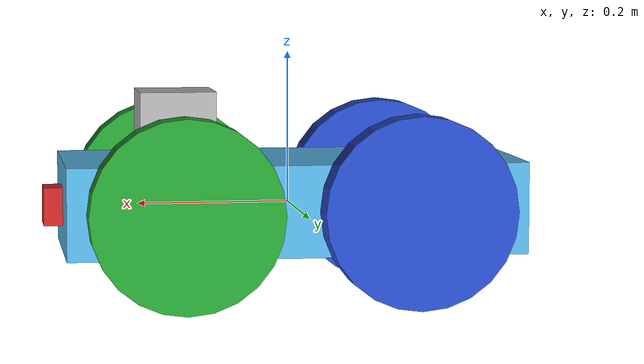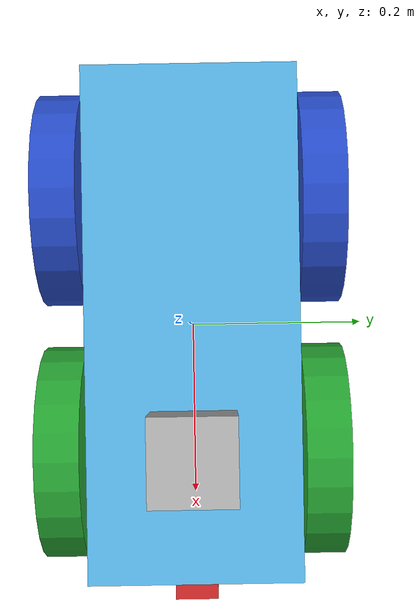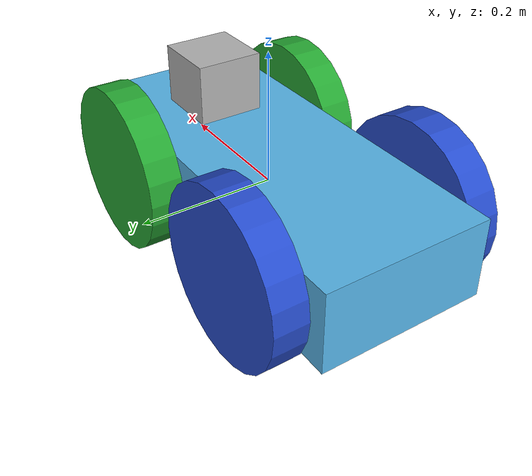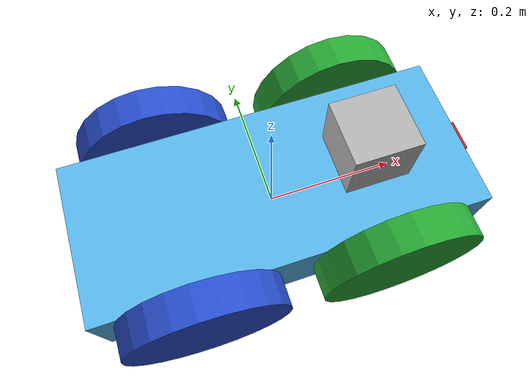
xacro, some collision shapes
<?xml version='1.0'?>

<robot name="my_robot" xmlns:xacro="http://www.ros.org/wiki/xacro">
<xacro:include filename="$(find my_robot)/urdf/my_robot.gazebo" />
  <link name="robot_footprint"></link>

  <joint name="robot_footprint_joint" type="fixed">
    <origin xyz="0 0 0" rpy="0 0 0" />
    <parent link="robot_footprint"/>
    <child link="chassis" />
  </joint>

  <joint type="continuous" name="left_wheel_1_hinge">
    <origin xyz="0.15 0.15 0" rpy="0 0 0"/>
    <child link="left_wheel_1"/>
    <parent link="chassis"/>
    <axis xyz="0 1 0" rpy="0 0 0"/>
    <limit effort="10000" velocity="1000"/>
    <dynamics damping="1.0" friction="1.0"/>
  </joint>

  <joint type="continuous" name="left_wheel_2_hinge">
    <origin xyz="-0.15 0.15 0" rpy="0 0 0"/>
    <child link="left_wheel_2"/>
    <parent link="chassis"/>
    <axis xyz="0 1 0" rpy="0 0 0"/>
    <limit effort="10000" velocity="1000"/>
    <dynamics damping="1.0" friction="1.0"/>
  </joint>

   <joint type="continuous" name="right_wheel_1_hinge">
    <origin xyz="0.15 -0.15 0" rpy="0 0 0"/>
    <child link="right_wheel_1"/>
    <parent link="chassis"/>
    <axis xyz="0 1 0" rpy="0 0 0"/>
    <limit effort="10000" velocity="1000"/>
    <dynamics damping="1.0" friction="1.0"/>
  </joint>

   <joint type="continuous" name="right_wheel_2_hinge">
    <origin xyz="-0.15 -0.15 0" rpy="0 0 0"/>
    <child link="right_wheel_2"/>
    <parent link="chassis"/>
    <axis xyz="0 1 0" rpy="0 0 0"/>
    <limit effort="10000" velocity="1000"/>
    <dynamics damping="1.0" friction="1.0"/>
  </joint>

  <joint name="camera_joint" type="fixed">
    <origin xyz="0.3 0 0" rpy="0 0 0" />
    <parent link="chassis"/>
    <child link="camera" />
    <axix xyz="0 1 0" />
  </joint>

  <joint name="hokuyo_joint" type="fixed">
    <origin xyz="0.15 0 0.1" rpy="0 0 0" />
    <parent link="chassis"/>
    <child link="hokuyo" />
    <axix xyz="0 1 0" />
  </joint>

  <link name='chassis'>
    <pose>0 0 0.1 0 0 0</pose>

    <inertial>
      <mass value="15.0"/>
      <origin xyz="0.0 0 0" rpy=" 0 0 0"/>
      <inertia
          ixx="0.1" ixy="0" ixz="0"
          iyy="0.1" iyz="0"
          izz="0.1"
      />
    </inertial>

    <collision name='chassis_collision'>
      <origin xyz="0 0 0" rpy=" 0 0 0"/>
      <geometry>
        <box size=".6 .25 .12"/>
      </geometry>
    </collision>

    <visual name='chassis_visual'>
      <origin xyz="0 0 0" rpy=" 0 0 0"/>
      <geometry>
        <box size=".6 .25 .12"/>
      </geometry>
    </visual>

  </link>

  <link name='left_wheel_1'>
    <pose>0 0 0.05 0 0 0</pose>

    <inertial>
      <mass value="5.0"/>
      <origin xyz="0.0 0 0" rpy=" 0 0 0"/>
      <inertia
          ixx="0.1" ixy="0" ixz="0"
          iyy="0.1" iyz="0"
          izz="0.1"
      />
    </inertial>

    <collision name='left_wheel_1_collision'>
      <origin xyz="0 0 0" rpy=" 0 1.5707 1.5707"/>
      <geometry>
        <cylinder radius="0.125" length = "0.05"/>
      </geometry>
    </collision>

    <visual name='left_wheel_1_visual'>
      <origin xyz="0 0 0" rpy=" 0 1.5707 1.5707"/>
      <geometry>
        <cylinder radius ="0.125" length = "0.05"/>
      </geometry>
    </visual>

  </link>

    <link name='left_wheel_2'>
    <pose>0 0 0.05 0 0 0</pose>

    <inertial>
      <mass value="5.0"/>
      <origin xyz="0.0 0 0" rpy=" 0 0 0"/>
      <inertia
          ixx="0.1" ixy="0" ixz="0"
          iyy="0.1" iyz="0"
          izz="0.1"
      />
    </inertial>

    <collision name='left_wheel_2_collision'>
      <origin xyz="0 0 0" rpy=" 0 1.5707 1.5707"/>
      <geometry>
        <cylinder radius="0.125" length = "0.05"/>
      </geometry>
    </collision>

    <visual name='left_wheel_2_visual'>
      <origin xyz="0 0 0" rpy=" 0 1.5707 1.5707"/>
      <geometry>
        <cylinder radius ="0.125" length = "0.05"/>
      </geometry>
    </visual>

  </link>

  <link name='right_wheel_1'>
    <pose>0 0 0.05 0 0 0</pose>

    <inertial>
      <mass value="5.0"/>
      <origin xyz="0 0 0" rpy=" 0 0 0"/>
      <inertia
          ixx="0.1" ixy="0" ixz="0"
          iyy="0.1" iyz="0"
          izz="0.1"
      />
    </inertial>

    <collision name='right_wheel_1_collision'>
      <origin xyz="0 0 0" rpy=" 0 1.5707 1.5707"/>
      <geometry>
        <cylinder radius="0.125" length = "0.05"/>
      </geometry>
    </collision>

    <visual name='right_wheel_1_visual'>
      <origin xyz="0 0 0" rpy=" 0 1.5707 1.5707"/>
      <geometry>
        <cylinder radius ="0.125" length = "0.05"/>
      </geometry>
    </visual>

  </link>

    <link name='right_wheel_2'>
    <pose>0 0 0.05 0 0 0</pose>

    <inertial>
      <mass value="5.0"/>
      <origin xyz="0 0 0" rpy=" 0 0 0"/>
      <inertia
          ixx="0.1" ixy="0" ixz="0"
          iyy="0.1" iyz="0"
          izz="0.1"
      />
    </inertial>

    <collision name='right_wheel_2_collision'>
      <origin xyz="0 0 0" rpy=" 0 1.5707 1.5707"/>
      <geometry>
        <cylinder radius="0.125" length = "0.05"/>
      </geometry>
    </collision>

    <visual name='right_wheel_2_visual'>
      <origin xyz="0 0 0" rpy=" 0 1.5707 1.5707"/>
      <geometry>
        <cylinder radius ="0.125" length = "0.05"/>
      </geometry>
    </visual>

  </link>

  <link name='camera'>
    <pose>0 0 0.1 0 0 0</pose>

    <inertial>
      <mass value="0.1"/>
      <origin xyz="0 0 0" rpy=" 0 0 0"/>
      <inertia
          ixx="1e-6" ixy="0" ixz="0"
          iyy="1e-6" iyz="0"
          izz="1e-6"
      />
    </inertial>

    <collision name='camera_collision'>
      <origin xyz="0 0 0" rpy=" 0 0 0"/>
      <geometry>
        <box size="0.05 0.05 0.05" />
      </geometry>
    </collision>

    <visual name='camera_visual'>
      <origin xyz="0 0 0" rpy=" 0 0 0"/>
      <geometry>
        <box size="0.05 0.05 0.05" />
      </geometry>
    </visual>

  </link>

  <link name='hokuyo'>
    <pose>0 0 0.1 0 0 0</pose>

    <inertial>
      <mass value="1e-5"/>
      <origin xyz="0 0 0" rpy=" 0 0 0"/>
      <inertia
          ixx="1e-6" ixy="0" ixz="0"
          iyy="1e-6" iyz="0"
          izz="1e-6"
      />
    </inertial>

    <collision name='hokuyo_collision'>
      <origin xyz="0 0 0" rpy=" 0 0 0"/>
      <geometry>
        <box size="0.1 0.1 0.1" />
      </geometry>
    </collision>

    <visual name='hokuyo_visual'>
      <origin xyz="0 0 0" rpy=" 0 0 0"/>
      <geometry>
      <mesh filename ="package://my_robot/meshes/hokuyo.dae" />
      </geometry>
    </visual>

  </link>

 <gazebo reference="right_wheel_1" >
    <material>Gazebo/Green</material>
 </gazebo>

 <gazebo reference="left_wheel_1" >
    <material>Gazebo/Green</material>
 </gazebo>

 <gazebo reference="right_wheel_2" >
    <material>Gazebo/Blue</material>
 </gazebo>

 <gazebo reference="left_wheel_2" >
    <material>Gazebo/Blue</material>
 </gazebo>

 <gazebo reference="camera" >
    <material>Gazebo/Red</material>
 </gazebo>

</robot>
